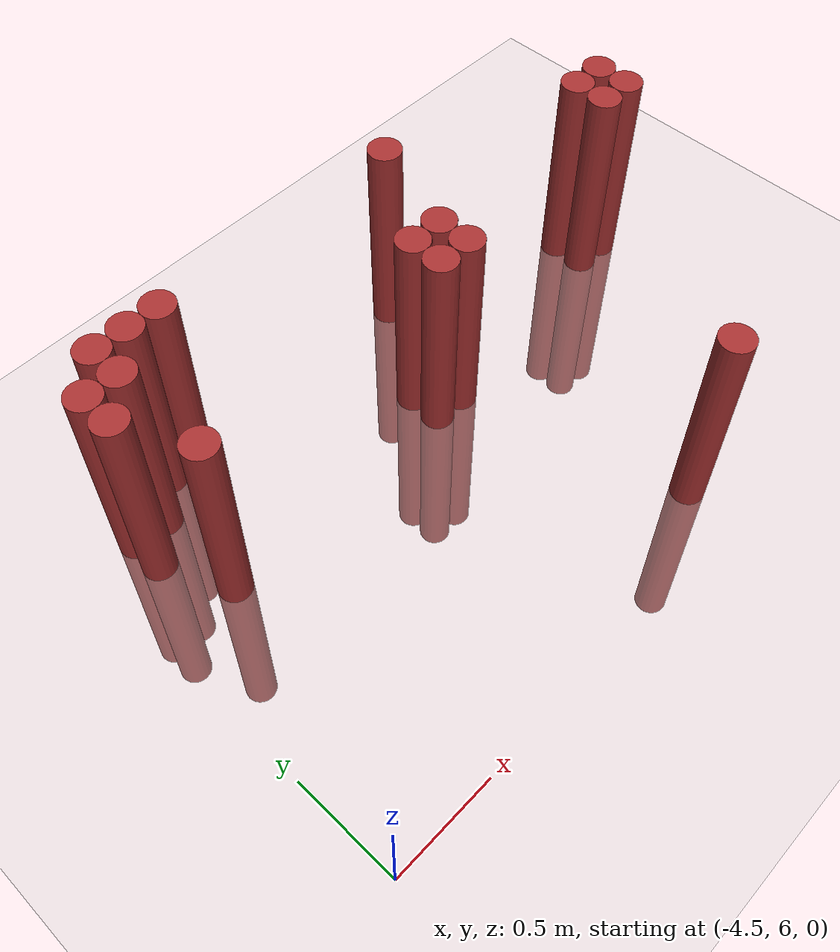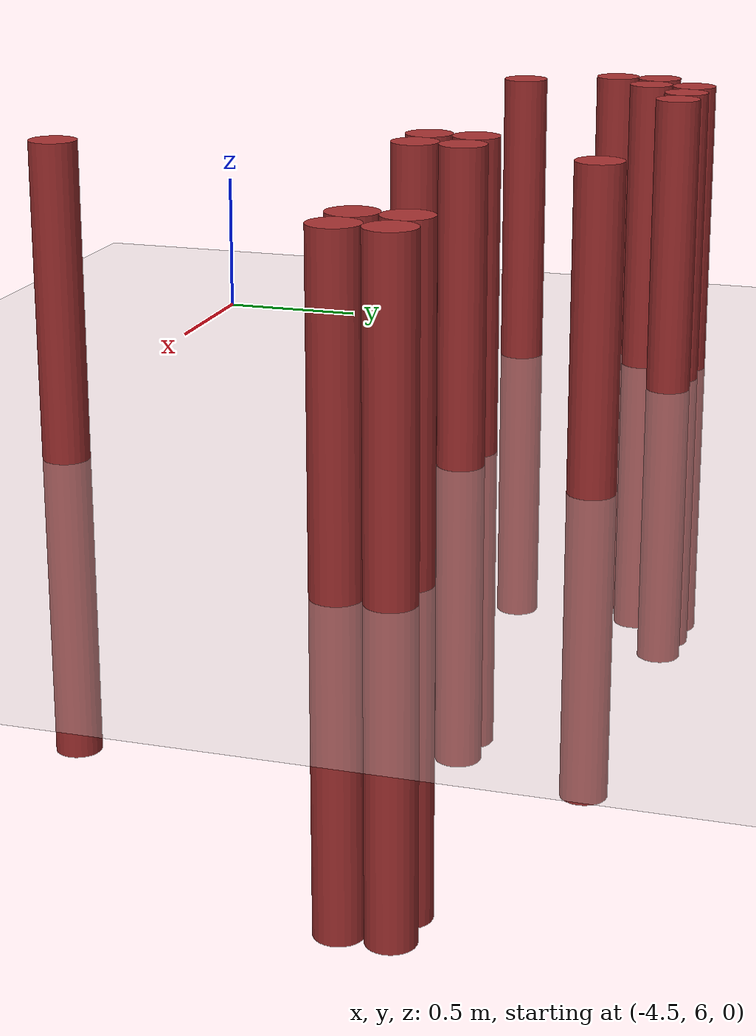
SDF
<sdf version="1.6">
 <world name="default">
  <model name="ground_plane">
   <static>1</static>
   <link name="link">
    <collision name="collision">
     <geometry><plane><normal>0 0 1</normal><size>100 100</size></plane></geometry>
     <surface><friction><ode><mu>100</mu><mu2>50</mu2></ode></friction></surface>
    </collision>
    <visual name="visual">
     <cast_shadows>0</cast_shadows>
     <geometry><plane><normal>0 0 1</normal><size>100 100</size></plane></geometry>
     <material>
      <script><uri>file://media/materials/scripts/gazebo.material</uri><name>Gazebo/Grey</name></script>
     </material>
    </visual>
   </link>
  </model>
  <model name="unit_cylinder_132">
   <static>1</static>
   <pose>-4.275000 7.575000 0.000000 0.000000 0.000000 0.000000</pose>
   <link name="link">
    <inertial>
     <mass>1</mass>
     <inertia><ixx>0.145833</ixx><ixy>0</ixy><ixz>0</ixz><iyy>0.145833</iyy><iyz>0</iyz><izz>0.125</izz></inertia>
    </inertial>
    <collision name="collision">
     <geometry><cylinder><radius>0.075000</radius><length>2</length></cylinder></geometry>
    </collision>
    <visual name="visual">
     <geometry><cylinder><radius>0.075000</radius><length>2</length></cylinder></geometry>
     <material>
      <ambient>0.648000 0.192000 0.192000 1</ambient>
      <diffuse>0.648000 0.192000 0.192000 1</diffuse>
     </material>
     <material>
      <script><name>Gazebo/Grey</name><uri>file://media/materials/scripts/gazebo.material</uri></script>
     </material>
    </visual>
   </link>
  </model>
  <model name="unit_cylinder_133">
   <static>1</static>
   <pose>-4.275000 7.725000 0.000000 0.000000 0.000000 0.000000</pose>
   <link name="link">
    <inertial>
     <mass>1</mass>
     <inertia><ixx>0.145833</ixx><ixy>0</ixy><ixz>0</ixz><iyy>0.145833</iyy><iyz>0</iyz><izz>0.125</izz></inertia>
    </inertial>
    <collision name="collision">
     <geometry><cylinder><radius>0.075000</radius><length>2</length></cylinder></geometry>
    </collision>
    <visual name="visual">
     <geometry><cylinder><radius>0.075000</radius><length>2</length></cylinder></geometry>
     <material>
      <ambient>0.648000 0.192000 0.192000 1</ambient>
      <diffuse>0.648000 0.192000 0.192000 1</diffuse>
     </material>
     <material>
      <script><name>Gazebo/Grey</name><uri>file://media/materials/scripts/gazebo.material</uri></script>
     </material>
    </visual>
   </link>
  </model>
  <model name="unit_cylinder_139">
   <static>1</static>
   <pose>-4.125000 7.275000 0.000000 0.000000 0.000000 0.000000</pose>
   <link name="link">
    <inertial>
     <mass>1</mass>
     <inertia><ixx>0.145833</ixx><ixy>0</ixy><ixz>0</ixz><iyy>0.145833</iyy><iyz>0</iyz><izz>0.125</izz></inertia>
    </inertial>
    <collision name="collision">
     <geometry><cylinder><radius>0.075000</radius><length>2</length></cylinder></geometry>
    </collision>
    <visual name="visual">
     <geometry><cylinder><radius>0.075000</radius><length>2</length></cylinder></geometry>
     <material>
      <ambient>0.648000 0.192000 0.192000 1</ambient>
      <diffuse>0.648000 0.192000 0.192000 1</diffuse>
     </material>
     <material>
      <script><name>Gazebo/Grey</name><uri>file://media/materials/scripts/gazebo.material</uri></script>
     </material>
    </visual>
   </link>
  </model>
  <model name="unit_cylinder_140">
   <static>1</static>
   <pose>-4.125000 7.725000 0.000000 0.000000 0.000000 0.000000</pose>
   <link name="link">
    <inertial>
     <mass>1</mass>
     <inertia><ixx>0.145833</ixx><ixy>0</ixy><ixz>0</ixz><iyy>0.145833</iyy><iyz>0</iyz><izz>0.125</izz></inertia>
    </inertial>
    <collision name="collision">
     <geometry><cylinder><radius>0.075000</radius><length>2</length></cylinder></geometry>
    </collision>
    <visual name="visual">
     <geometry><cylinder><radius>0.075000</radius><length>2</length></cylinder></geometry>
     <material>
      <ambient>0.648000 0.192000 0.192000 1</ambient>
      <diffuse>0.648000 0.192000 0.192000 1</diffuse>
     </material>
     <material>
      <script><name>Gazebo/Grey</name><uri>file://media/materials/scripts/gazebo.material</uri></script>
     </material>
    </visual>
   </link>
  </model>
  <model name="unit_cylinder_141">
   <static>1</static>
   <pose>-4.125000 7.875000 0.000000 0.000000 0.000000 0.000000</pose>
   <link name="link">
    <inertial>
     <mass>1</mass>
     <inertia><ixx>0.145833</ixx><ixy>0</ixy><ixz>0</ixz><iyy>0.145833</iyy><iyz>0</iyz><izz>0.125</izz></inertia>
    </inertial>
    <collision name="collision">
     <geometry><cylinder><radius>0.075000</radius><length>2</length></cylinder></geometry>
    </collision>
    <visual name="visual">
     <geometry><cylinder><radius>0.075000</radius><length>2</length></cylinder></geometry>
     <material>
      <ambient>0.648000 0.192000 0.192000 1</ambient>
      <diffuse>0.648000 0.192000 0.192000 1</diffuse>
     </material>
     <material>
      <script><name>Gazebo/Grey</name><uri>file://media/materials/scripts/gazebo.material</uri></script>
     </material>
    </visual>
   </link>
  </model>
  <model name="unit_cylinder_146">
   <static>1</static>
   <pose>-3.975000 7.875000 0.000000 0.000000 0.000000 0.000000</pose>
   <link name="link">
    <inertial>
     <mass>1</mass>
     <inertia><ixx>0.145833</ixx><ixy>0</ixy><ixz>0</ixz><iyy>0.145833</iyy><iyz>0</iyz><izz>0.125</izz></inertia>
    </inertial>
    <collision name="collision">
     <geometry><cylinder><radius>0.075000</radius><length>2</length></cylinder></geometry>
    </collision>
    <visual name="visual">
     <geometry><cylinder><radius>0.075000</radius><length>2</length></cylinder></geometry>
     <material>
      <ambient>0.648000 0.192000 0.192000 1</ambient>
      <diffuse>0.648000 0.192000 0.192000 1</diffuse>
     </material>
     <material>
      <script><name>Gazebo/Grey</name><uri>file://media/materials/scripts/gazebo.material</uri></script>
     </material>
    </visual>
   </link>
  </model>
  <model name="unit_cylinder_151">
   <static>1</static>
   <pose>-3.825000 7.875000 0.000000 0.000000 0.000000 0.000000</pose>
   <link name="link">
    <inertial>
     <mass>1</mass>
     <inertia><ixx>0.145833</ixx><ixy>0</ixy><ixz>0</ixz><iyy>0.145833</iyy><iyz>0</iyz><izz>0.125</izz></inertia>
    </inertial>
    <collision name="collision">
     <geometry><cylinder><radius>0.075000</radius><length>2</length></cylinder></geometry>
    </collision>
    <visual name="visual">
     <geometry><cylinder><radius>0.075000</radius><length>2</length></cylinder></geometry>
     <material>
      <ambient>0.648000 0.192000 0.192000 1</ambient>
      <diffuse>0.648000 0.192000 0.192000 1</diffuse>
     </material>
     <material>
      <script><name>Gazebo/Grey</name><uri>file://media/materials/scripts/gazebo.material</uri></script>
     </material>
    </visual>
   </link>
  </model>
  <model name="unit_cylinder_162">
   <static>1</static>
   <pose>-2.925000 7.275000 0.000000 0.000000 0.000000 0.000000</pose>
   <link name="link">
    <inertial>
     <mass>1</mass>
     <inertia><ixx>0.145833</ixx><ixy>0</ixy><ixz>0</ixz><iyy>0.145833</iyy><iyz>0</iyz><izz>0.125</izz></inertia>
    </inertial>
    <collision name="collision">
     <geometry><cylinder><radius>0.075000</radius><length>2</length></cylinder></geometry>
    </collision>
    <visual name="visual">
     <geometry><cylinder><radius>0.075000</radius><length>2</length></cylinder></geometry>
     <material>
      <ambient>0.648000 0.192000 0.192000 1</ambient>
      <diffuse>0.648000 0.192000 0.192000 1</diffuse>
     </material>
     <material>
      <script><name>Gazebo/Grey</name><uri>file://media/materials/scripts/gazebo.material</uri></script>
     </material>
    </visual>
   </link>
  </model>
  <model name="unit_cylinder_163">
   <static>1</static>
   <pose>-2.925000 7.425000 0.000000 0.000000 0.000000 0.000000</pose>
   <link name="link">
    <inertial>
     <mass>1</mass>
     <inertia><ixx>0.145833</ixx><ixy>0</ixy><ixz>0</ixz><iyy>0.145833</iyy><iyz>0</iyz><izz>0.125</izz></inertia>
    </inertial>
    <collision name="collision">
     <geometry><cylinder><radius>0.075000</radius><length>2</length></cylinder></geometry>
    </collision>
    <visual name="visual">
     <geometry><cylinder><radius>0.075000</radius><length>2</length></cylinder></geometry>
     <material>
      <ambient>0.648000 0.192000 0.192000 1</ambient>
      <diffuse>0.648000 0.192000 0.192000 1</diffuse>
     </material>
     <material>
      <script><name>Gazebo/Grey</name><uri>file://media/materials/scripts/gazebo.material</uri></script>
     </material>
    </visual>
   </link>
  </model>
  <model name="unit_cylinder_166">
   <static>1</static>
   <pose>-2.775000 7.275000 0.000000 0.000000 0.000000 0.000000</pose>
   <link name="link">
    <inertial>
     <mass>1</mass>
     <inertia><ixx>0.145833</ixx><ixy>0</ixy><ixz>0</ixz><iyy>0.145833</iyy><iyz>0</iyz><izz>0.125</izz></inertia>
    </inertial>
    <collision name="collision">
     <geometry><cylinder><radius>0.075000</radius><length>2</length></cylinder></geometry>
    </collision>
    <visual name="visual">
     <geometry><cylinder><radius>0.075000</radius><length>2</length></cylinder></geometry>
     <material>
      <ambient>0.648000 0.192000 0.192000 1</ambient>
      <diffuse>0.648000 0.192000 0.192000 1</diffuse>
     </material>
     <material>
      <script><name>Gazebo/Grey</name><uri>file://media/materials/scripts/gazebo.material</uri></script>
     </material>
    </visual>
   </link>
  </model>
  <model name="unit_cylinder_167">
   <static>1</static>
   <pose>-2.775000 7.425000 0.000000 0.000000 0.000000 0.000000</pose>
   <link name="link">
    <inertial>
     <mass>1</mass>
     <inertia><ixx>0.145833</ixx><ixy>0</ixy><ixz>0</ixz><iyy>0.145833</iyy><iyz>0</iyz><izz>0.125</izz></inertia>
    </inertial>
    <collision name="collision">
     <geometry><cylinder><radius>0.075000</radius><length>2</length></cylinder></geometry>
    </collision>
    <visual name="visual">
     <geometry><cylinder><radius>0.075000</radius><length>2</length></cylinder></geometry>
     <material>
      <ambient>0.648000 0.192000 0.192000 1</ambient>
      <diffuse>0.648000 0.192000 0.192000 1</diffuse>
     </material>
     <material>
      <script><name>Gazebo/Grey</name><uri>file://media/materials/scripts/gazebo.material</uri></script>
     </material>
    </visual>
   </link>
  </model>
  <model name="unit_cylinder_172">
   <static>1</static>
   <pose>-2.625000 7.875000 0.000000 0.000000 0.000000 0.000000</pose>
   <link name="link">
    <inertial>
     <mass>1</mass>
     <inertia><ixx>0.145833</ixx><ixy>0</ixy><ixz>0</ixz><iyy>0.145833</iyy><iyz>0</iyz><izz>0.125</izz></inertia>
    </inertial>
    <collision name="collision">
     <geometry><cylinder><radius>0.075000</radius><length>2</length></cylinder></geometry>
    </collision>
    <visual name="visual">
     <geometry><cylinder><radius>0.075000</radius><length>2</length></cylinder></geometry>
     <material>
      <ambient>0.648000 0.192000 0.192000 1</ambient>
      <diffuse>0.648000 0.192000 0.192000 1</diffuse>
     </material>
     <material>
      <script><name>Gazebo/Grey</name><uri>file://media/materials/scripts/gazebo.material</uri></script>
     </material>
    </visual>
   </link>
  </model>
  <model name="unit_cylinder_176">
   <static>1</static>
   <pose>-2.475000 6.225000 0.000000 0.000000 0.000000 0.000000</pose>
   <link name="link">
    <inertial>
     <mass>1</mass>
     <inertia><ixx>0.145833</ixx><ixy>0</ixy><ixz>0</ixz><iyy>0.145833</iyy><iyz>0</iyz><izz>0.125</izz></inertia>
    </inertial>
    <collision name="collision">
     <geometry><cylinder><radius>0.075000</radius><length>2</length></cylinder></geometry>
    </collision>
    <visual name="visual">
     <geometry><cylinder><radius>0.075000</radius><length>2</length></cylinder></geometry>
     <material>
      <ambient>0.648000 0.192000 0.192000 1</ambient>
      <diffuse>0.648000 0.192000 0.192000 1</diffuse>
     </material>
     <material>
      <script><name>Gazebo/Grey</name><uri>file://media/materials/scripts/gazebo.material</uri></script>
     </material>
    </visual>
   </link>
  </model>
  <model name="unit_cylinder_189">
   <static>1</static>
   <pose>-1.725000 7.425000 0.000000 0.000000 0.000000 0.000000</pose>
   <link name="link">
    <inertial>
     <mass>1</mass>
     <inertia><ixx>0.145833</ixx><ixy>0</ixy><ixz>0</ixz><iyy>0.145833</iyy><iyz>0</iyz><izz>0.125</izz></inertia>
    </inertial>
    <collision name="collision">
     <geometry><cylinder><radius>0.075000</radius><length>2</length></cylinder></geometry>
    </collision>
    <visual name="visual">
     <geometry><cylinder><radius>0.075000</radius><length>2</length></cylinder></geometry>
     <material>
      <ambient>0.648000 0.192000 0.192000 1</ambient>
      <diffuse>0.648000 0.192000 0.192000 1</diffuse>
     </material>
     <material>
      <script><name>Gazebo/Grey</name><uri>file://media/materials/scripts/gazebo.material</uri></script>
     </material>
    </visual>
   </link>
  </model>
  <model name="unit_cylinder_190">
   <static>1</static>
   <pose>-1.725000 7.575000 0.000000 0.000000 0.000000 0.000000</pose>
   <link name="link">
    <inertial>
     <mass>1</mass>
     <inertia><ixx>0.145833</ixx><ixy>0</ixy><ixz>0</ixz><iyy>0.145833</iyy><iyz>0</iyz><izz>0.125</izz></inertia>
    </inertial>
    <collision name="collision">
     <geometry><cylinder><radius>0.075000</radius><length>2</length></cylinder></geometry>
    </collision>
    <visual name="visual">
     <geometry><cylinder><radius>0.075000</radius><length>2</length></cylinder></geometry>
     <material>
      <ambient>0.648000 0.192000 0.192000 1</ambient>
      <diffuse>0.648000 0.192000 0.192000 1</diffuse>
     </material>
     <material>
      <script><name>Gazebo/Grey</name><uri>file://media/materials/scripts/gazebo.material</uri></script>
     </material>
    </visual>
   </link>
  </model>
  <model name="unit_cylinder_191">
   <static>1</static>
   <pose>-1.575000 7.425000 0.000000 0.000000 0.000000 0.000000</pose>
   <link name="link">
    <inertial>
     <mass>1</mass>
     <inertia><ixx>0.145833</ixx><ixy>0</ixy><ixz>0</ixz><iyy>0.145833</iyy><iyz>0</iyz><izz>0.125</izz></inertia>
    </inertial>
    <collision name="collision">
     <geometry><cylinder><radius>0.075000</radius><length>2</length></cylinder></geometry>
    </collision>
    <visual name="visual">
     <geometry><cylinder><radius>0.075000</radius><length>2</length></cylinder></geometry>
     <material>
      <ambient>0.648000 0.192000 0.192000 1</ambient>
      <diffuse>0.648000 0.192000 0.192000 1</diffuse>
     </material>
     <material>
      <script><name>Gazebo/Grey</name><uri>file://media/materials/scripts/gazebo.material</uri></script>
     </material>
    </visual>
   </link>
  </model>
  <model name="unit_cylinder_192">
   <static>1</static>
   <pose>-1.575000 7.575000 0.000000 0.000000 0.000000 0.000000</pose>
   <link name="link">
    <inertial>
     <mass>1</mass>
     <inertia><ixx>0.145833</ixx><ixy>0</ixy><ixz>0</ixz><iyy>0.145833</iyy><iyz>0</iyz><izz>0.125</izz></inertia>
    </inertial>
    <collision name="collision">
     <geometry><cylinder><radius>0.075000</radius><length>2</length></cylinder></geometry>
    </collision>
    <visual name="visual">
     <geometry><cylinder><radius>0.075000</radius><length>2</length></cylinder></geometry>
     <material>
      <ambient>0.648000 0.192000 0.192000 1</ambient>
      <diffuse>0.648000 0.192000 0.192000 1</diffuse>
     </material>
     <material>
      <script><name>Gazebo/Grey</name><uri>file://media/materials/scripts/gazebo.material</uri></script>
     </material>
    </visual>
   </link>
  </model>
 </world>
</sdf>
